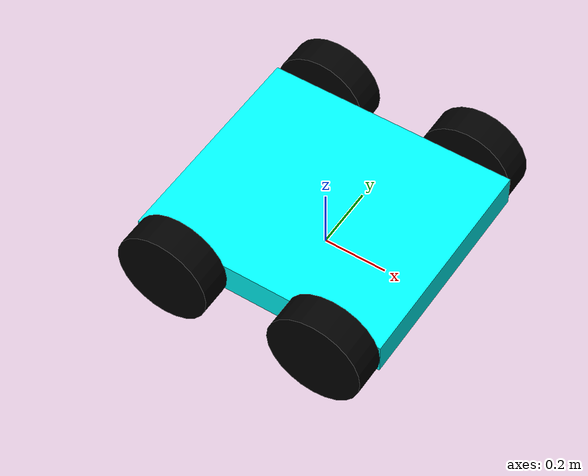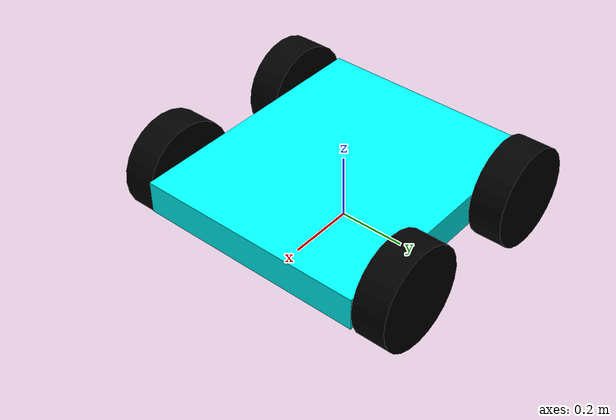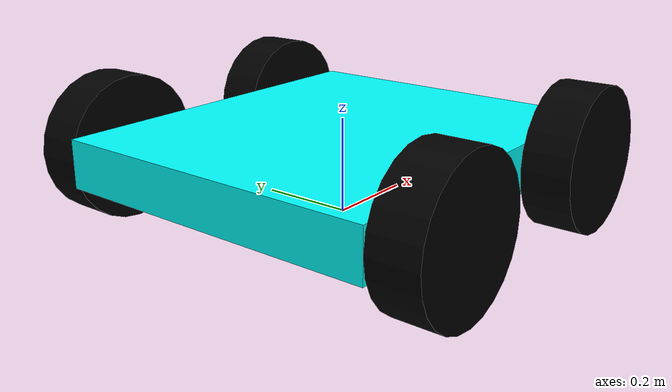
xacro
<?xml version="1.0"?>
<robot xmlns:xacro="http://www.ros.org/wiki/xacro" name="robot_name">

<link name="base_footprint">

</link>

<link name="base_link">
    <inertial>
        <origin xyz="0.0 0.0 0.0" rpy="0.0 0.0 0.0"/>
        <mass value="0.0"/>
        <inertia ixx="0.0" ixy="0.0" ixz="0.0" iyy="0.0" iyz="0.0" izz="0.0"/>
    </inertial>
    <visual name="">
        <origin xyz="0.0 0.0 0.0" rpy="0.0 0.0 0.0"/>
        <geometry>
            <box size="0.8 0.7 0.1"/>
        </geometry>
        <material name="">
            <color rgba="0.0 1.0 1.0 1.0"/>
            <texture filename=""/>
        </material>
    </visual>
    <collision>
        <origin xyz="0.0 0.0 0.0" rpy="0.0 0.0 0.0"/>
        <geometry>
            <box size="0.0 0.0 0.0"/>
        </geometry>
    </collision>
</link>

<joint name="base_joint" type="fixed">
    <origin xyz="0.0 0.0 0.135" rpy="0.0 0.0 0.0"/>
    <parent link="base_footprint"/>
    <child link="base_link"/>
    <axis xyz="0.0 0.0 0.0"/>
</joint>

<!-- Rear Right Wheel -->
<xacro:property name="rsider" value="rear_right"/>

<link name="wheel_${rsider}_link">
    <inertial>
        <origin xyz="0.0 0.0 0.0" rpy="0.0 0.0 0.0"/>
        <mass value="0.0"/>
        <inertia ixx="0.0" ixy="0.0" ixz="0.0" iyy="0.0" iyz="0.0" izz="0.0"/>
    </inertial>
    <visual name="">
        <origin xyz="0.0 0.0 0.0" rpy="0.0 0.0 0.0"/>
        <geometry>
            <cylinder radius="0.15" length="0.1"/>
        </geometry>
        <material name="black">
            <color rgba="0.0 0.0 0.0 1.0"/>
        </material>
    </visual>
    <collision>
        <origin xyz="0.0 0.0 0.0" rpy="0.0 0.0 0.0"/>
        <geometry>
            <cylinder radius="0.15" length="0.1"/>
        </geometry>
    </collision>
</link>

<joint name="wheel_${rsider}_joint" type="continuous">
    <origin xyz="0.250 0.40 0.0" rpy="1.57 0.0 0.0"/>
    <parent link="base_link"/>
    <child link="wheel_${rsider}_link"/>
    <axis xyz="0.0 0.0 1.0"/>
</joint>

<!-- Rear Left Wheel -->
<xacro:property name="rsidel" value="rear_left"/>

<link name="wheel_${rsidel}_link">
    <inertial>
        <origin xyz="0.0 0.0 0.0" rpy="0.0 0.0 0.0"/>
        <mass value="0.0"/>
        <inertia ixx="0.0" ixy="0.0" ixz="0.0" iyy="0.0" iyz="0.0" izz="0.0"/>
    </inertial>
    <visual name="">
        <origin xyz="0.0 0.0 0.0" rpy="0.0 0.0 0.0"/>
        <geometry>
            <cylinder radius="0.15" length="0.1"/>
        </geometry>
        <material name="black">
            <color rgba="0.0 0.0 0.0 1.0"/>
        </material>
    </visual>
    <collision>
        <origin xyz="0.0 0.0 0.0" rpy="0.0 0.0 0.0"/>
        <geometry>
            <cylinder radius="0.15" length="0.1"/>
        </geometry>
    </collision>
</link>

<joint name="wheel_${rsidel}_joint" type="continuous">
    <origin xyz="0.250 -0.40 0.0" rpy="1.57 0.0 0.0"/>
    <parent link="base_link"/>
    <child link="wheel_${rsidel}_link"/>
    <axis xyz="0.0 0.0 1.0"/>
</joint>

<!-- Front Right Wheel -->
<xacro:property name="fsider" value="front_right"/>

<link name="wheel_${fsider}_link">
    <inertial>
        <origin xyz="0.0 0.0 0.0" rpy="0.0 0.0 0.0"/>
        <mass value="0.0"/>
        <inertia ixx="0.0" ixy="0.0" ixz="0.0" iyy="0.0" iyz="0.0" izz="0.0"/>
    </inertial>
    <visual name="">
        <origin xyz="0.0 0.0 0.0" rpy="0.0 0.0 0.0"/>
        <geometry>
            <cylinder radius="0.15" length="0.1"/>
        </geometry>
        <material name="black">
            <color rgba="0.0 0.0 0.0 1.0"/>
        </material>
    </visual>
    <collision>
        <origin xyz="0.0 0.0 0.0" rpy="0.0 0.0 0.0"/>
        <geometry>
            <cylinder radius="0.15" length="0.1"/>
        </geometry>
    </collision>
</link>

<joint name="wheel_${fsider}_joint" type="continuous">
    <origin xyz="-0.250 0.40 0.0" rpy="1.57 0.0 0.0"/>
    <parent link="base_link"/>
    <child link="wheel_${fsider}_link"/>
    <axis xyz="0.0 0.0 1.0"/>
</joint>

<!-- Front Left Wheel -->
<xacro:property name="fsidel" value="front_left"/>

<link name="wheel_${fsidel}_link">
    <inertial>
        <origin xyz="0.0 0.0 0.0" rpy="0.0 0.0 0.0"/>
        <mass value="0.0"/>
        <inertia ixx="0.0" ixy="0.0" ixz="0.0" iyy="0.0" iyz="0.0" izz="0.0"/>
    </inertial>
    <visual name="">
        <origin xyz="0.0 0.0 0.0" rpy="0.0 0.0 0.0"/>
        <geometry>
            <cylinder radius="0.15" length="0.1"/>
        </geometry>
        <material name="black">
            <color rgba="0.0 0.0 0.0 1.0"/>
        </material>
    </visual>
    <collision>
        <origin xyz="0.0 0.0 0.0" rpy="0.0 0.0 0.0"/>
        <geometry>
            <cylinder radius="0.15" length="0.1"/>
        </geometry>
    </collision>
</link>

<joint name="wheel_${fsidel}_joint" type="continuous">
    <origin xyz="-0.250 -0.40 0.0" rpy="1.57 0.0 0.0"/>
    <parent link="base_link"/>
    <child link="wheel_${fsidel}_link"/>
    <axis xyz="0.0 0.0 1.0"/>
</joint>

</robot>
